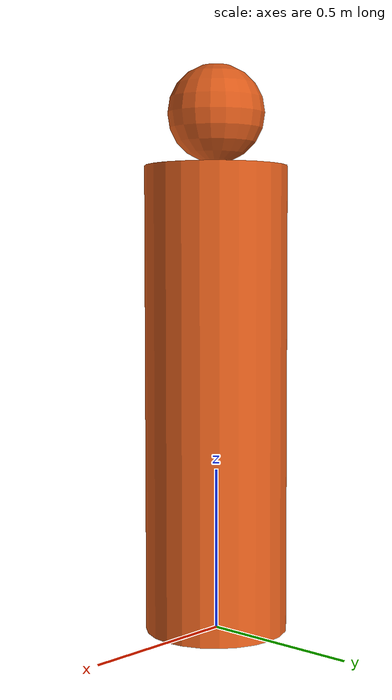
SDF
<?xml version="1.0" encoding="UTF-8"?>
<sdf version="1.9">
  <model name="entity_person">
    <static>true</static>
    <link name="link">
      <visual name="body">
        <pose>0 0 0.72 0 0 0</pose>
        <geometry>
          <cylinder>
            <radius>0.22</radius>
            <length>1.44</length>
          </cylinder>
        </geometry>
        <material>
          <diffuse>0.85 0.35 0.1 1</diffuse>
          <ambient>0.85 0.35 0.1 1</ambient>
        </material>
      </visual>
      <visual name="head">
        <pose>0 0 1.6 0 0 0</pose>
        <geometry>
          <sphere>
            <radius>0.15</radius>
          </sphere>
        </geometry>
        <material>
          <diffuse>0.85 0.35 0.1 1</diffuse>
          <ambient>0.85 0.35 0.1 1</ambient>
        </material>
      </visual>
    </link>
  </model>
</sdf>
